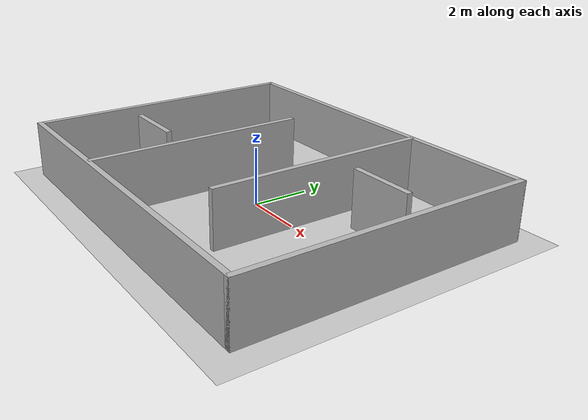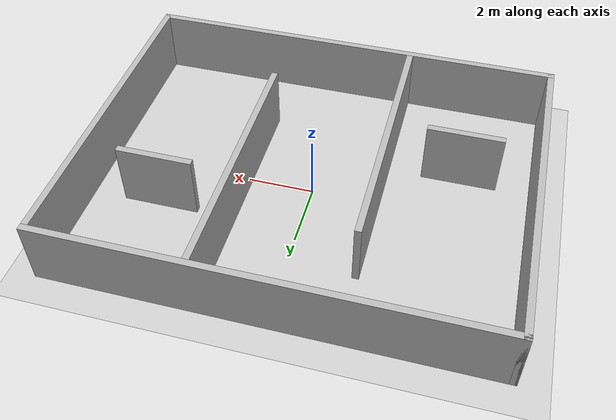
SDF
<sdf version='1.7'>
  <world name='p1c_corridors'>
    <plugin name='gazebo_ros_state' filename='libgazebo_ros_state.so'>
      <ros><namespace>/gazebo</namespace></ros>
      <update_rate>10.0</update_rate>
    </plugin>
    <include><uri>model://sun</uri></include>
    <include><uri>model://ground_plane</uri></include>
    <gravity>0 0 -9.8</gravity>
    <physics type='ode'>
      <max_step_size>0.001</max_step_size>
      <real_time_factor>1</real_time_factor>
      <real_time_update_rate>1000</real_time_update_rate>
      <ode>
        <solver>
          <type>quick</type>
          <iters>150</iters>
        </solver>
      </ode>
    </physics>
    <model name='corridor_walls'>
      <static>true</static>
      <link name='walls'>
        <collision name='north'><pose>0 5 1 0 0 0</pose><geometry><box><size>13.2 0.2 2</size></box></geometry></collision>
        <visual name='north_visual'><pose>0 5 1 0 0 0</pose><geometry><box><size>13.2 0.2 2</size></box></geometry></visual>
        <collision name='south'><pose>0 -5 1 0 0 0</pose><geometry><box><size>13.2 0.2 2</size></box></geometry></collision>
        <visual name='south_visual'><pose>0 -5 1 0 0 0</pose><geometry><box><size>13.2 0.2 2</size></box></geometry></visual>
        <collision name='east'><pose>6.5 0 1 0 0 0</pose><geometry><box><size>0.2 10.2 2</size></box></geometry></collision>
        <visual name='east_visual'><pose>6.5 0 1 0 0 0</pose><geometry><box><size>0.2 10.2 2</size></box></geometry></visual>
        <collision name='west'><pose>-6.5 0 1 0 0 0</pose><geometry><box><size>0.2 10.2 2</size></box></geometry></collision>
        <visual name='west_visual'><pose>-6.5 0 1 0 0 0</pose><geometry><box><size>0.2 10.2 2</size></box></geometry></visual>
        <collision name='left_spine'><pose>-2 -1.05 1 0 0 0</pose><geometry><box><size>0.2 7.9 2</size></box></geometry></collision>
        <visual name='left_spine_visual'><pose>-2 -1.05 1 0 0 0</pose><geometry><box><size>0.2 7.9 2</size></box></geometry></visual>
        <collision name='right_spine'><pose>2 1.05 1 0 0 0</pose><geometry><box><size>0.2 7.9 2</size></box></geometry></collision>
        <visual name='right_spine_visual'><pose>2 1.05 1 0 0 0</pose><geometry><box><size>0.2 7.9 2</size></box></geometry></visual>
        <collision name='left_branch'><pose>-4.25 -1.6 1 0 0 0</pose><geometry><box><size>2.3 0.2 2</size></box></geometry></collision>
        <visual name='left_branch_visual'><pose>-4.25 -1.6 1 0 0 0</pose><geometry><box><size>2.3 0.2 2</size></box></geometry></visual>
        <collision name='right_branch'><pose>4.25 1.6 1 0 0 0</pose><geometry><box><size>2.3 0.2 2</size></box></geometry></collision>
        <visual name='right_branch_visual'><pose>4.25 1.6 1 0 0 0</pose><geometry><box><size>2.3 0.2 2</size></box></geometry></visual>
      </link>
    </model>
  </world>
</sdf>
